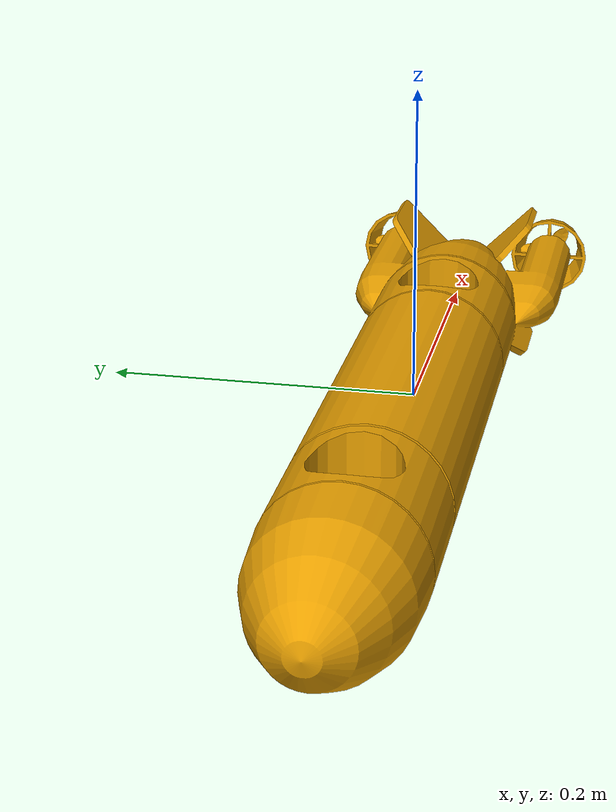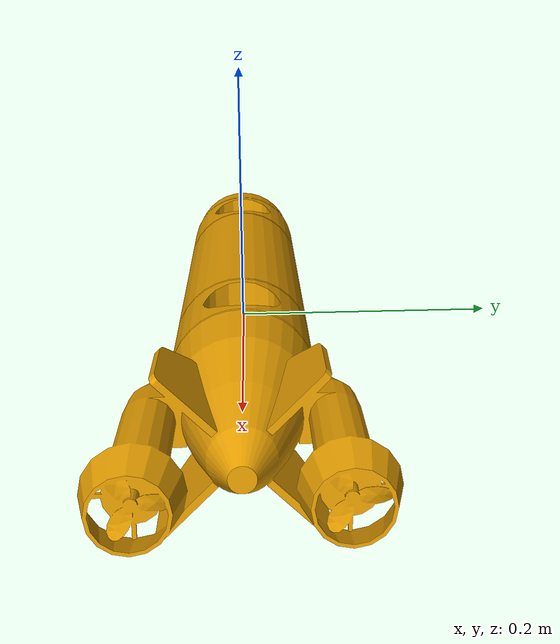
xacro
<?xml version="1.0"?>
<robot name="uauv" xmlns:xacro="http://www.ros.org/wiki/xacro">
  <xacro:property name="PI" value="3.1415926535897931"/>

  <!-- Body properties -->
  <xacro:property name="body_mass"        value="10"/>
  <xacro:property name="body_radius"      value="0.05"/>
  <xacro:property name="body_length"      value="1.163"/>
  <xacro:property name="X_cog"            value="-0.45"/>

  <!-- Variable buoyancy link -->
  <xacro:macro name="buoyancy_link" params="name xyz">

    <joint name="${name}" type="revolute">
      <parent link="base_link"/>
      <child link="${name}"/>
      <origin rpy="0 0 0" xyz="${xyz}"/>
      <axis xyz="0 1 0"/>
      <limit effort="0" velocity="5.0" lower="0" upper="0" />
    </joint>

    <link name="${name}">
      <buoyancy>
        <variable compensation="3.0"/>
      </buoyancy>
      <inertial>
        <mass value=".1"/>
        <inertia
          ixx=".1"
          ixy="0.0"
          ixz="0.0"
          iyy=".1"
          iyz="0.0"
          izz=".1"/>
      </inertial>
    </link>
  </xacro:macro>

  <gazebo>
    <!-- Freefloating gazebo plugin -->
    <plugin name="smtu_freefloating_gazebo_control"
      filename="libsmtu_freefloating_gazebo_control.so">
      <switchService>switch</switchService>
      <updateRate>100</updateRate>
      <link>base_link</link>

      <!-- For each thruster, give the map to
           XYZ+RPY and the maximum effort -->
      <thruster>
        <name>v_back</name>
        <map>0 0 -1 0 -0.20168 0</map>
        <effort>30</effort>
      </thruster>
      <thruster>
        <name>v_front</name>
        <map>0 0 -1 0 0.10238 0</map>
        <effort>30</effort>
      </thruster>
      <thruster>
        <name>h_right</name>
        <map>-1 0 0 0 0 0.05828</map>
        <effort>30</effort>
      </thruster>
      <thruster>
        <name>h_left</name>
        <map>-1 0 0 0 0 -0.05828</map>
        <effort>30</effort>
      </thruster>
    </plugin>
  </gazebo>

  <link name="base_link">
    <visual>
      <origin rpy="0 0 0" xyz="0 0 0"/>
      <geometry>
        <mesh filename="package://smtu_uauv/objects/uauv.stl"/>
      </geometry>
    </visual>

    <collision>
      <origin xyz="0 0 0" rpy="0 ${PI/2} 0"/>
      <geometry>
        <cylinder radius="${body_radius}" length="${body_length}"/>
      </geometry>
    </collision>

    <inertial>
      <origin xyz="0 0 ${-body_radius}" rpy="0 ${-PI/2} 0"/>
      <mass value="${body_mass}"/>
      <inertia
        ixx="${body_mass*(body_radius*body_radius/4+body_length*body_length/12)}"
        ixy="0.0"
        ixz="0.0"
        iyy="${body_mass*(body_radius*body_radius/4+body_length*body_length/12)}"
        iyz="0.0"
        izz="${body_mass*body_radius*body_radius/2}"/>
    </inertial>

    <buoyancy>
      <compensation>1.0</compensation>
      <origin xyz= "0 0 0"/>
      <limit radius=".1"/>
      <damping xyz="60 100 100" rpy="20 50 50"/>
    </buoyancy>
  </link>

  <xacro:buoyancy_link name="front" xyz="-0.474 0 0"/>
  <xacro:buoyancy_link name="rear" xyz="0.54 0 0"/>
</robot>
